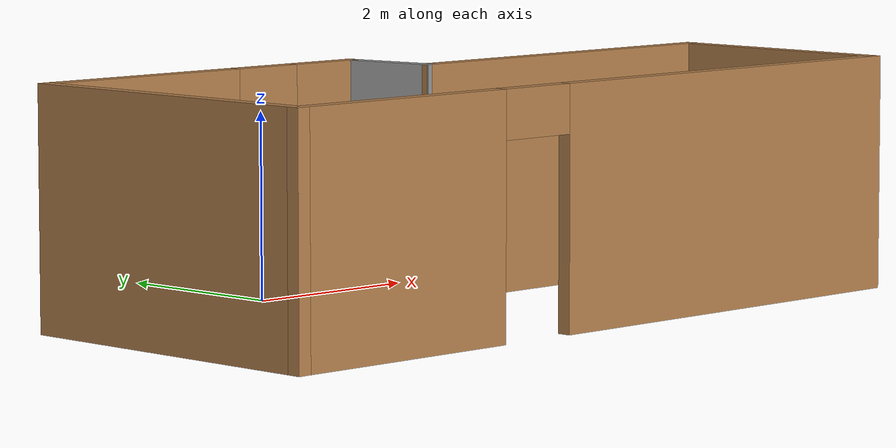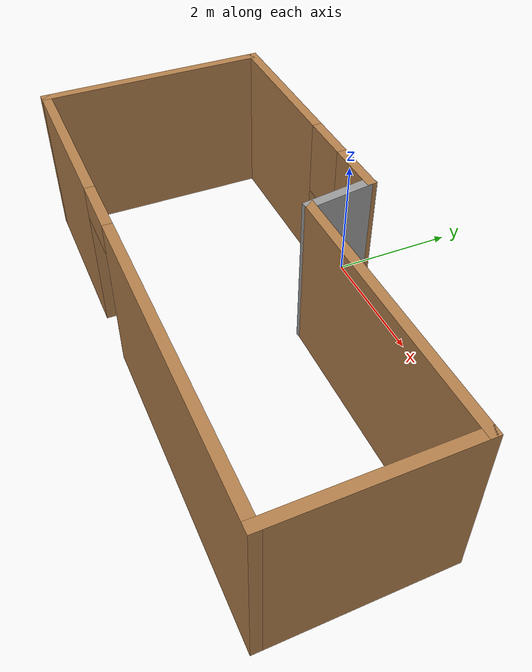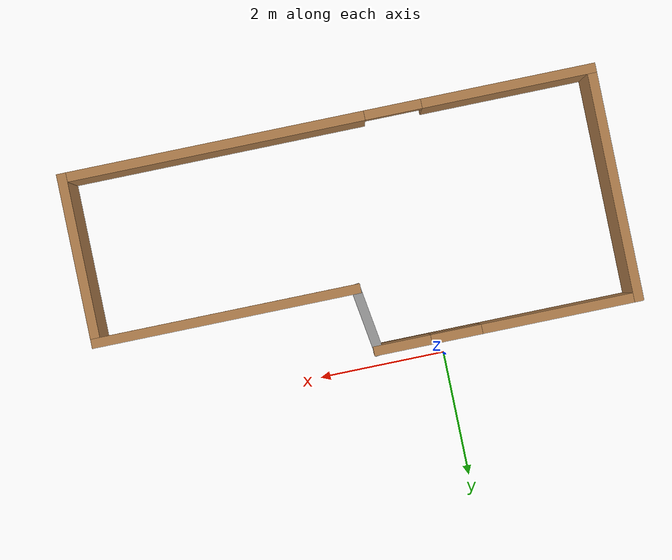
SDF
<?xml version='1.0'?>
<sdf version='1.6'>
  <model name='room.world'>
    <pose frame=''>1.095 -2.07485 0 0 -0 0</pose>
    <link name='Wall_0'>
      <collision name='Wall_0_Collision'>
        <geometry>
          <box>
            <size>4.25 0.15 2.5</size>
          </box>
        </geometry>
        <pose frame=''>0 0 1.25 0 -0 0</pose>
      </collision>
      <visual name='Wall_0_Visual'>
        <pose frame=''>0 0 1.25 0 -0 0</pose>
        <geometry>
          <box>
            <size>4.25 0.15 2.5</size>
          </box>
        </geometry>
        <material>
          <script>
            <uri>file://media/materials/scripts/gazebo.material</uri>
            <name>Gazebo/Wood</name>
          </script>
          <ambient>1 1 1 1</ambient>
        </material>
        <meta>
          <layer>0</layer>
        </meta>
      </visual>
      <pose frame=''>2.125 0.794852 0 0 -0 0</pose>
    </link>
    <link name='Wall_1'>
      <collision name='Wall_1_Collision'>
        <geometry>
          <box>
            <size>2.75 0.15 2.5</size>
          </box>
        </geometry>
        <pose frame=''>0 0 1.25 0 -0 0</pose>
      </collision>
      <visual name='Wall_1_Visual'>
        <pose frame=''>0 0 1.25 0 -0 0</pose>
        <geometry>
          <box>
            <size>2.75 0.15 2.5</size>
          </box>
        </geometry>
        <material>
          <script>
            <uri>file://media/materials/scripts/gazebo.material</uri>
            <name>Gazebo/Wood</name>
          </script>
          <ambient>1 1 1 1</ambient>
        </material>
        <meta>
          <layer>0</layer>
        </meta>
      </visual>
      <pose frame=''>4.175 -0.505148 0 0 -0 -1.5708</pose>
    </link>
    <link name='Wall_2'>
      <pose frame=''>0 -1.80515 0 0 -0 3.14159</pose>
      <visual name='Wall_2_Visual_0'>
        <pose frame=''>-1.82684 0 1.25 0 -0 0</pose>
        <geometry>
          <box>
            <size>4.84632 0.15 2.5</size>
          </box>
        </geometry>
        <material>
          <script>
            <uri>file://media/materials/scripts/gazebo.material</uri>
            <name>Gazebo/Wood</name>
          </script>
          <ambient>1 1 1 1</ambient>
        </material>
        <meta>
          <layer>0</layer>
        </meta>
      </visual>
      <collision name='Wall_2_Collision_0'>
        <geometry>
          <box>
            <size>4.84632 0.15 2.5</size>
          </box>
        </geometry>
        <pose frame=''>-1.82684 0 1.25 0 -0 0</pose>
      </collision>
      <visual name='Wall_2_Visual_1'>
        <pose frame=''>2.87316 0 1.25 0 -0 0</pose>
        <geometry>
          <box>
            <size>2.75368 0.15 2.5</size>
          </box>
        </geometry>
        <material>
          <script>
            <uri>file://media/materials/scripts/gazebo.material</uri>
            <name>Gazebo/Wood</name>
          </script>
          <ambient>1 1 1 1</ambient>
        </material>
        <meta>
          <layer>0</layer>
        </meta>
      </visual>
      <collision name='Wall_2_Collision_1'>
        <geometry>
          <box>
            <size>2.75368 0.15 2.5</size>
          </box>
        </geometry>
        <pose frame=''>2.87316 0 1.25 0 -0 0</pose>
      </collision>
      <visual name='Wall_2_Visual_2'>
        <pose frame=''>1.04632 0 2.25 0 -0 0</pose>
        <geometry>
          <box>
            <size>0.9 0.15 0.5</size>
          </box>
        </geometry>
        <material>
          <script>
            <uri>file://media/materials/scripts/gazebo.material</uri>
            <name>Gazebo/Wood</name>
          </script>
          <ambient>1 1 1 1</ambient>
        </material>
        <meta>
          <layer>0</layer>
        </meta>
      </visual>
      <collision name='Wall_2_Collision_2'>
        <geometry>
          <box>
            <size>0.9 0.15 0.5</size>
          </box>
        </geometry>
        <pose frame=''>1.04632 0 2.25 0 -0 0</pose>
      </collision>
    </link>
    <link name='Wall_3'>
      <collision name='Wall_3_Collision'>
        <geometry>
          <box>
            <size>3.75 0.15 2.5</size>
          </box>
        </geometry>
        <pose frame=''>0 0 1.25 0 -0 0</pose>
      </collision>
      <visual name='Wall_3_Visual'>
        <pose frame=''>0 0 1.25 0 -0 0</pose>
        <geometry>
          <box>
            <size>3.75 0.15 2.5</size>
          </box>
        </geometry>
        <material>
          <script>
            <uri>file://media/materials/scripts/gazebo.material</uri>
            <name>Gazebo/Wood</name>
          </script>
          <ambient>1 1 1 1</ambient>
        </material>
        <meta>
          <layer>0</layer>
        </meta>
      </visual>
      <pose frame=''>-4.175 -0.005148 0 0 -0 1.5708</pose>
    </link>
    <link name='Wall_4'>
      <pose frame=''>-2.125 1.79485 0 0 -0 0</pose>
      <visual name='Wall_4_Visual_0'>
        <pose frame=''>-0.853896 0 1.25 0 -0 0</pose>
        <geometry>
          <box>
            <size>2.54221 0.15 2.5</size>
          </box>
        </geometry>
        <material>
          <script>
            <uri>file://media/materials/scripts/gazebo.material</uri>
            <name>Gazebo/Wood</name>
          </script>
          <ambient>1 1 1 1</ambient>
        </material>
        <meta>
          <layer>0</layer>
        </meta>
      </visual>
      <collision name='Wall_4_Collision_0'>
        <geometry>
          <box>
            <size>2.54221 0.15 2.5</size>
          </box>
        </geometry>
        <pose frame=''>-0.853896 0 1.25 0 -0 0</pose>
      </collision>
      <visual name='Wall_4_Visual_1'>
        <pose frame=''>1.2711 0 0.25 0 -0 0</pose>
        <geometry>
          <box>
            <size>1.70779 0.15 0.5</size>
          </box>
        </geometry>
        <material>
          <script>
            <uri>file://media/materials/scripts/gazebo.material</uri>
            <name>Gazebo/Wood</name>
          </script>
          <ambient>1 1 1 1</ambient>
        </material>
        <meta>
          <layer>0</layer>
        </meta>
      </visual>
      <collision name='Wall_4_Collision_1'>
        <geometry>
          <box>
            <size>1.70779 0.15 0.5</size>
          </box>
        </geometry>
        <pose frame=''>1.2711 0 0.25 0 -0 0</pose>
      </collision>
      <visual name='Wall_4_Visual_2'>
        <pose frame=''>1.6711 0 1.5 0 -0 0</pose>
        <geometry>
          <box>
            <size>0.907793 0.15 2</size>
          </box>
        </geometry>
        <material>
          <script>
            <uri>file://media/materials/scripts/gazebo.material</uri>
            <name>Gazebo/Wood</name>
          </script>
          <ambient>1 1 1 1</ambient>
        </material>
        <meta>
          <layer>0</layer>
        </meta>
      </visual>
      <collision name='Wall_4_Collision_2'>
        <geometry>
          <box>
            <size>0.907793 0.15 2</size>
          </box>
        </geometry>
        <pose frame=''>1.6711 0 1.5 0 -0 0</pose>
      </collision>
      <visual name='Wall_4_Visual_3'>
        <pose frame=''>0.817207 0 1.9 0 -0 0</pose>
        <geometry>
          <box>
            <size>0.8 0.15 1.2</size>
          </box>
        </geometry>
        <material>
          <script>
            <uri>file://media/materials/scripts/gazebo.material</uri>
            <name>Gazebo/Wood</name>
          </script>
          <ambient>1 1 1 1</ambient>
        </material>
        <meta>
          <layer>0</layer>
        </meta>
      </visual>
      <collision name='Wall_4_Collision_3'>
        <geometry>
          <box>
            <size>0.8 0.15 1.2</size>
          </box>
        </geometry>
        <pose frame=''>0.817207 0 1.9 0 -0 0</pose>
      </collision>
    </link>
    <link name='Wall_5'>
      <collision name='Wall_5_Collision'>
        <geometry>
          <box>
            <size>1.16119 0.15 2.5</size>
          </box>
        </geometry>
        <pose frame=''>0 0 1.25 0 -0 0</pose>
      </collision>
      <visual name='Wall_5_Visual'>
        <pose frame=''>0 0 1.25 0 -0 0</pose>
        <geometry>
          <box>
            <size>1.16119 0.15 2.5</size>
          </box>
        </geometry>
        <material>
          <script>
            <uri>file://media/materials/scripts/gazebo.material</uri>
            <name>Gazebo/Grey</name>
          </script>
          <ambient>1 1 1 1</ambient>
        </material>
        <meta>
          <layer>0</layer>
        </meta>
      </visual>
      <pose frame=''>0 1.29485 0 0 -0 -1.42191</pose>
    </link>
    <static>1</static>
  </model>
</sdf>
